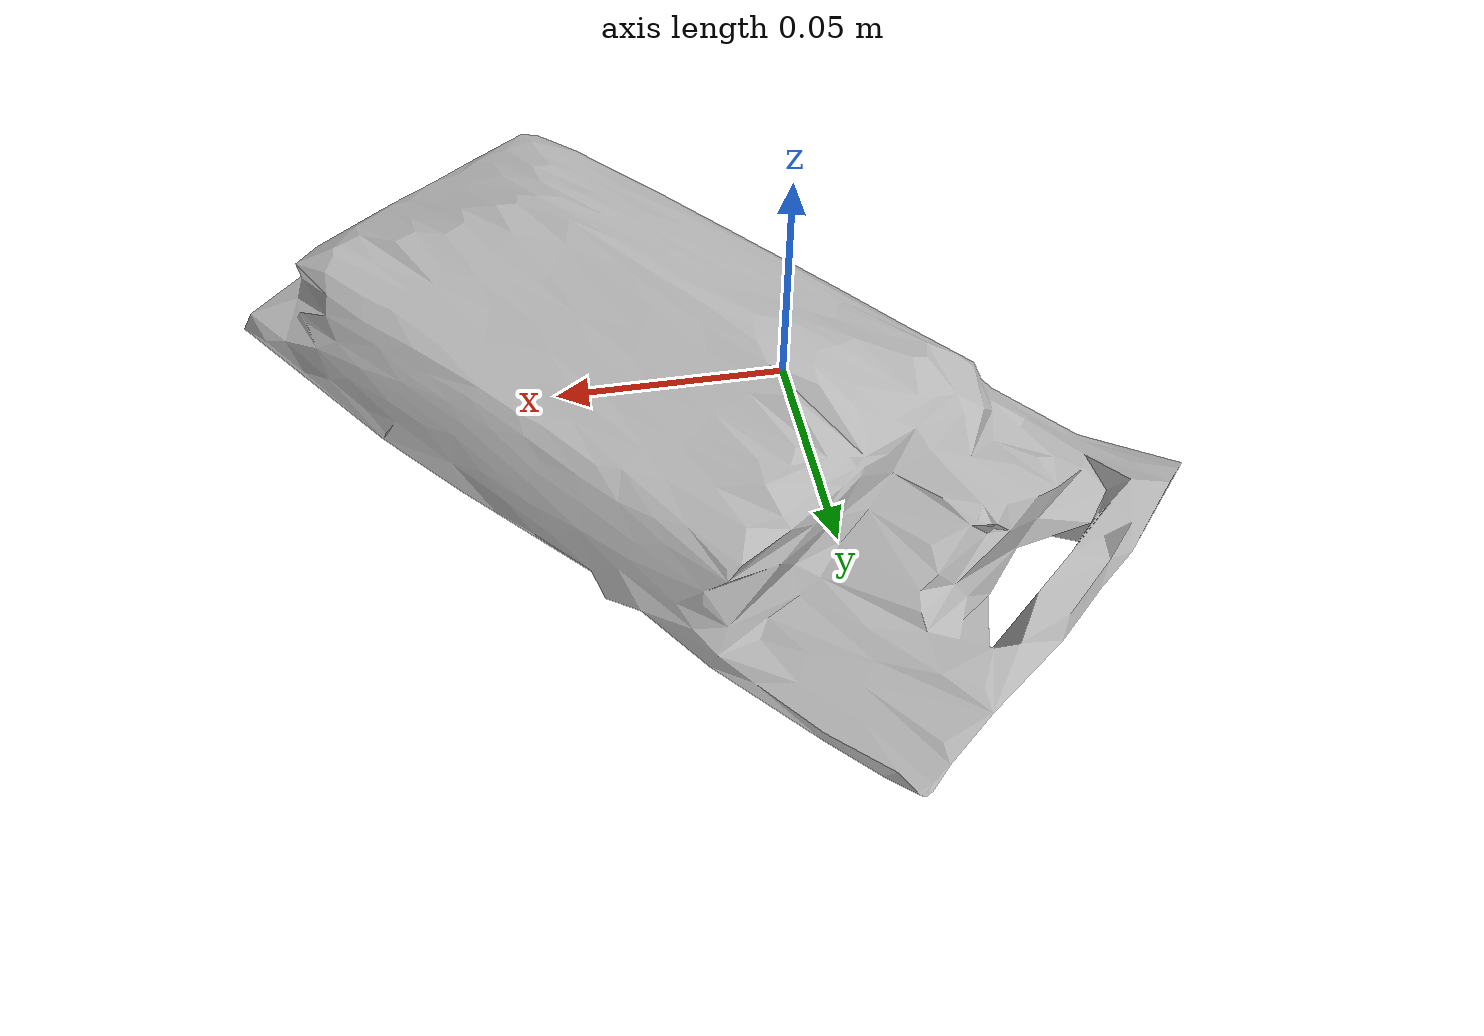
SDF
<?xml version="1.0" ?>
<sdf version="1.4">
  <model name="stanley_66_052">
    <link name="stanley_66_052_link">
      <inertial>
        <pose>0 0 0 0 0 0</pose>
        <mass>0.08</mass>
      </inertial>

      <visual name="stanley_66_052_visual">
        <pose>0 0 0 0 0 0</pose>
        <material>
          <script>
            <uri>model://stanley_66_052/materials/scripts</uri>
            <uri>model://stanley_66_052/materials/textures</uri>
            <name>stanley_66_052</name>
          </script>
        </material>
        <geometry>
          <mesh>
            <uri>model://stanley_66_052/meshes/stanley_66_052.dae</uri>
          </mesh>
        </geometry>
      </visual>

      <collision name="stanley_66_052_collision">
        <pose>0 0 0 0 0 0</pose>
        <geometry>
          <mesh>
            <uri>model://stanley_66_052/meshes/stanley_66_052.dae</uri>
          </mesh>
        </geometry>
        <surface>
          <friction>
            <ode>
              <mu>0.8</mu>
              <mu2>0.8</mu2>
            </ode>
          </friction>
        </surface>
      </collision>

    </link>
  </model>
</sdf>
